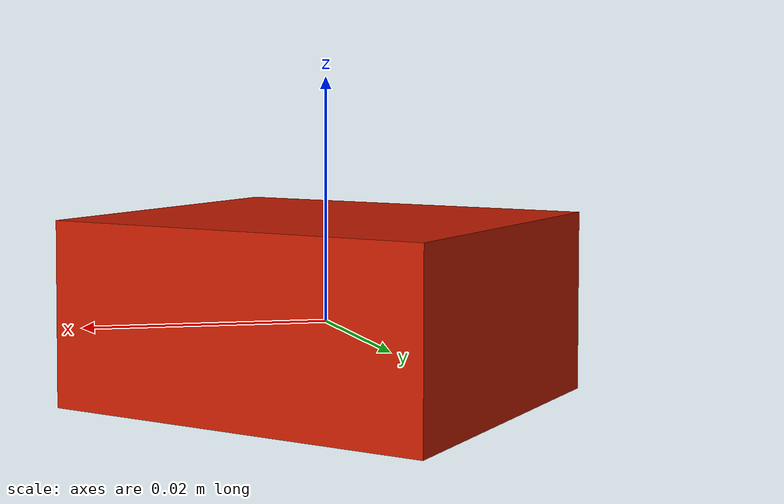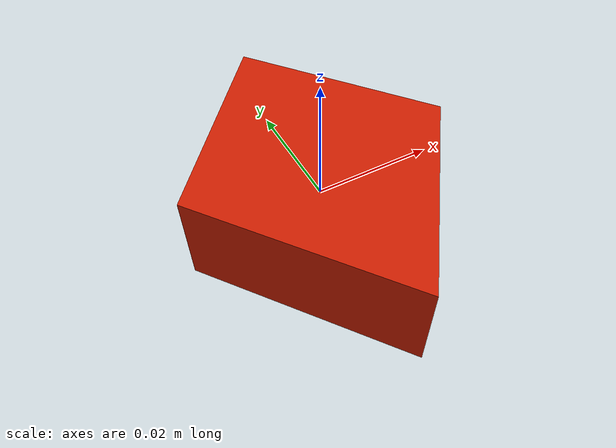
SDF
<?xml version="1.0" ?>
<sdf version="1.5">
  <model name="losange_orange">
    <static>false</static>
    <link name="link">
      <pose>0 0 0 0 0 0</pose>
      <collision name="collision">
        <geometry>
          <mesh>
            <uri>model://losange_orange/meshes/losange_orange.dae</uri>
          </mesh>
        </geometry>
      </collision>
      <visual name="visual">
        <geometry>
          <mesh>
            <uri>model://losange_orange/meshes/losange_orange.dae</uri>
          </mesh>
        </geometry>
        <material>

        </material>
      </visual>
      <inertial>
        <mass>0.014</mass>
        <inertia> <!-- inertias are tricky to compute -->
          <!-- http://gazebosim.org/tutorials?tut=inertia&cat=build_robot -->
          <ixx>2.3e-6</ixx>       <!-- for a box: ixx = 0.083 * mass * (y*y + z*z) -->
          <ixy>0.0</ixy>         <!-- for a box: ixy = 0 -->
          <ixz>0.0</ixz>         <!-- for a box: ixz = 0 -->
          <iyy>1.4e-6</iyy>       <!-- for a box: iyy = 0.083 * mass * (x*x + z*z) -->
          <iyz>0.0</iyz>         <!-- for a box: iyz = 0 -->
          <izz>3.2e-6</izz>       <!-- for a box: izz = 0.083 * mass * (x*x + y*y) -->
        </inertia>
      </inertial>
    </link>
  </model>
</sdf>
